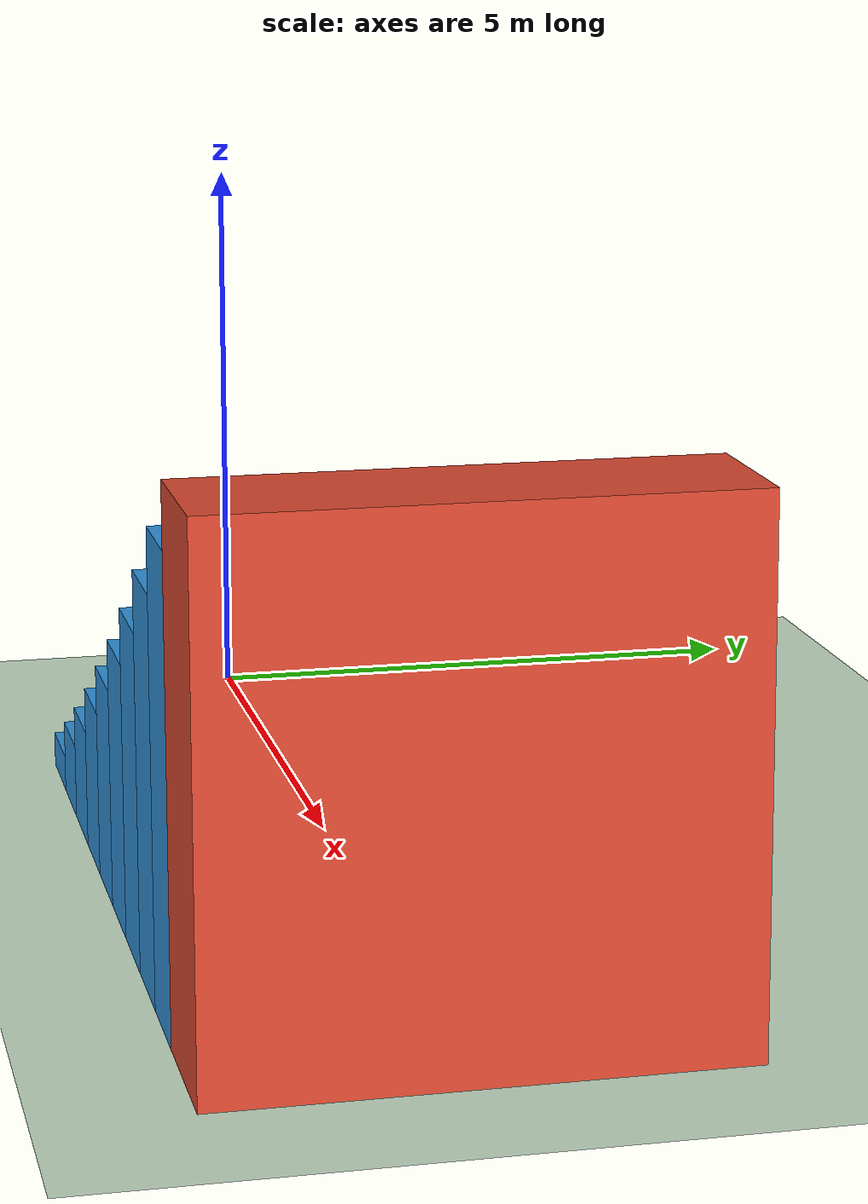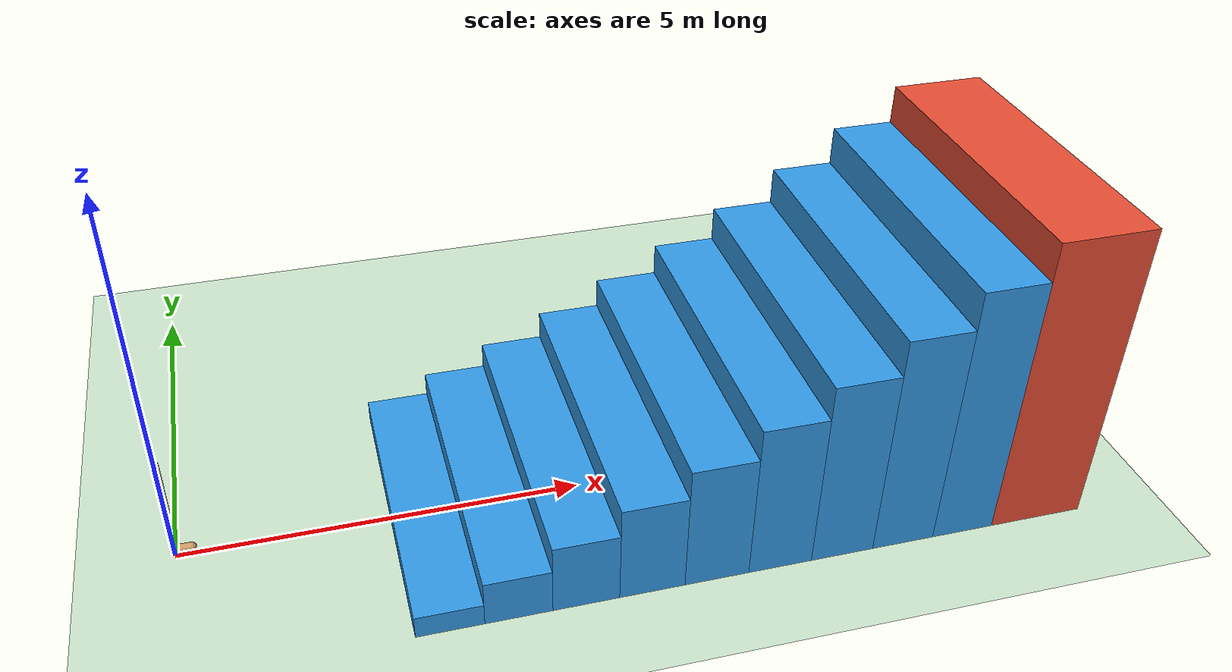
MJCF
<!--
Walker2D Cumulative 10-Step Stairs Model (Step Rise: +0.30m ~ +0.50m)
Total Accumulating Height up to ~4.1m
With Final Jump Landing Drop-off
-->
<mujoco model="walker2d_stairs10_03_05">
  <compiler angle="degree" inertiafromgeom="true"/>
  <default>
    <joint armature="0.01" damping=".1" limited="true"/>
    <geom conaffinity="0" condim="3" contype="1" density="1000" friction=".7 .1 .1" rgba="0.8 0.6 .4 1"/>
  </default>
  <option integrator="RK4" timestep="0.002"/>
  <worldbody>
    <light cutoff="100" diffuse="1 1 1" dir="-0 0 -1.3" directional="true" exponent="1" pos="0 0 1.3" specular=".1 .1 .1"/>

    <!-- 기본 평지 바닥 (z=0) -->
    <geom conaffinity="1" condim="3" name="floor" pos="0 0 0" rgba="0.8 0.9 0.8 1" size="40 40 40" type="plane" material="MatPlane"/>

    <!--
      10계단 누적 지형 (Step 1~10: 계단당 단차 +0.30m ~ +0.50m 씩 점진적 상승)
      Total Height Profile: 0.30m -> 0.62m -> 0.97m -> 1.35m -> 1.75m -> 2.17m -> 2.62m -> 3.10m -> 3.60m -> 4.10m
    -->
    <!-- 계단 1: 단차 +0.30m, 누적 0.30m -->
    <geom conaffinity="1" condim="3" name="bump1" pos="3.0 0 0.15" size="0.4 2 0.15" type="box" rgba="0.2 0.6 0.9 1" material="MatPlane"/>
    <!-- 계단 2: 단차 +0.32m, 누적 0.62m -->
    <geom conaffinity="1" condim="3" name="bump2" pos="3.8 0 0.31" size="0.4 2 0.31" type="box" rgba="0.2 0.6 0.9 1" material="MatPlane"/>
    <!-- 계단 3: 단차 +0.35m, 누적 0.97m -->
    <geom conaffinity="1" condim="3" name="bump3" pos="4.6 0 0.485" size="0.4 2 0.485" type="box" rgba="0.2 0.6 0.9 1" material="MatPlane"/>
    <!-- 계단 4: 단차 +0.38m, 누적 1.35m -->
    <geom conaffinity="1" condim="3" name="bump4" pos="5.4 0 0.675" size="0.4 2 0.675" type="box" rgba="0.2 0.6 0.9 1" material="MatPlane"/>
    <!-- 계단 5: 단차 +0.40m, 누적 1.75m -->
    <geom conaffinity="1" condim="3" name="bump5" pos="6.2 0 0.875" size="0.4 2 0.875" type="box" rgba="0.2 0.6 0.9 1" material="MatPlane"/>
    <!-- 계단 6: 단차 +0.42m, 누적 2.17m -->
    <geom conaffinity="1" condim="3" name="bump6" pos="7.0 0 1.085" size="0.4 2 1.085" type="box" rgba="0.2 0.6 0.9 1" material="MatPlane"/>
    <!-- 계단 7: 단차 +0.45m, 누적 2.62m -->
    <geom conaffinity="1" condim="3" name="bump7" pos="7.8 0 1.31" size="0.4 2 1.31" type="box" rgba="0.2 0.6 0.9 1" material="MatPlane"/>
    <!-- 계단 8: 단차 +0.48m, 누적 3.10m -->
    <geom conaffinity="1" condim="3" name="bump8" pos="8.6 0 1.55" size="0.4 2 1.55" type="box" rgba="0.2 0.6 0.9 1" material="MatPlane"/>
    <!-- 계단 9: 단차 +0.50m, 누적 3.60m -->
    <geom conaffinity="1" condim="3" name="bump9" pos="9.4 0 1.80" size="0.4 2 1.80" type="box" rgba="0.2 0.6 0.9 1" material="MatPlane"/>
    <!-- 계단 10: 단차 +0.50m, 누적 4.10m (최종 4.1m 고도 정상 도약대) -->
    <geom conaffinity="1" condim="3" name="bump10" pos="10.4 0 2.05" size="0.6 2 2.05" type="box" rgba="0.9 0.3 0.2 1" material="MatPlane"/>

    <body name="torso" pos="0 0 1.25">
      <camera name="track" mode="trackcom" pos="0 -3 -0.25" xyaxes="1 0 0 0 0 1"/>
      <joint armature="0" axis="1 0 0" damping="0" limited="false" name="rootx" pos="0 0 -1.25" stiffness="0" type="slide"/>
      <joint armature="0" axis="0 0 1" damping="0" limited="false" name="rootz" pos="0 0 -1.25" ref="1.25" stiffness="0" type="slide"/>
      <joint armature="0" axis="0 1 0" damping="0" limited="false" name="rooty" pos="0 0 0" stiffness="0" type="hinge"/>
      <geom friction="0.9" name="torso_geom" size="0.05 0.2" type="capsule"/>
      <body name="thigh" pos="0 0 -0.2">
        <joint axis="0 -1 0" name="thigh_joint" pos="0 0 0" range="-150 0" type="hinge"/>
        <geom friction="0.9" pos="0 0 -0.225" name="thigh_geom" size="0.05 0.225" type="capsule"/>
        <body name="leg" pos="0 0 -0.7">
          <joint axis="0 -1 0" name="leg_joint" pos="0 0 0.25" range="-150 0" type="hinge"/>
          <geom friction="0.9" name="leg_geom" size="0.04 0.25" type="capsule"/>
          <body name="foot" pos="0.2 0 -0.35">
            <joint axis="0 -1 0" name="foot_joint" pos="-0.2 0 0.1" range="-45 45" type="hinge"/>
            <geom friction="1.9" pos="-0.1 0 0.1" quat="0.70710678118654757 0 -0.70710678118654746 0" name="foot_geom" size="0.06 0.1" type="capsule"/>
          </body>
        </body>
      </body>
      <body name="thigh_left" pos="0 0 -0.2">
        <joint axis="0 -1 0" name="thigh_left_joint" pos="0 0 0" range="-150 0" type="hinge"/>
        <geom friction="0.9" name="thigh_left_geom" rgba=".7 .3 .6 1" size="0.05 0.225" pos="0 0 -0.225" type="capsule"/>
        <body name="leg_left" pos="0 0 -0.7">
          <joint axis="0 -1 0" name="leg_left_joint" pos="0 0 0.25" range="-150 0" type="hinge"/>
          <geom friction="0.9" name="leg_left_geom" rgba=".7 .3 .6 1" size="0.04 0.25" type="capsule"/>
          <body name="foot_left" pos="0.2 0 -0.35">
            <joint axis="0 -1 0" name="foot_left_joint" pos="-0.2 0 0.1" range="-45 45" type="hinge"/>
            <geom friction="1.9" name="foot_left_geom" rgba=".7 .3 .6 1" size="0.06 0.1" pos="-0.1 0 0.1" type="capsule" quat="0.70710678118654757 0 -0.70710678118654746 0"/>
          </body>
        </body>
      </body>
    </body>
  </worldbody>
  <actuator>
    <motor ctrllimited="true" ctrlrange="-1.0 1.0" gear="100" joint="thigh_joint"/>
    <motor ctrllimited="true" ctrlrange="-1.0 1.0" gear="100" joint="leg_joint"/>
    <motor ctrllimited="true" ctrlrange="-1.0 1.0" gear="100" joint="foot_joint"/>
    <motor ctrllimited="true" ctrlrange="-1.0 1.0" gear="100" joint="thigh_left_joint"/>
    <motor ctrllimited="true" ctrlrange="-1.0 1.0" gear="100" joint="leg_left_joint"/>
    <motor ctrllimited="true" ctrlrange="-1.0 1.0" gear="100" joint="foot_left_joint"/>
  </actuator>
  <asset>
    <texture type="skybox" builtin="gradient" rgb1=".4 .5 .6" rgb2="0 0 0" width="100" height="100"/>
    <texture builtin="flat" height="1278" mark="cross" markrgb="1 1 1" name="texgeom" random="0.01" rgb1="0.8 0.6 0.4" rgb2="0.8 0.6 0.4" type="cube" width="127"/>
    <texture builtin="checker" height="100" name="texplane" rgb1="0 0 0" rgb2="0.8 0.8 0.8" type="2d" width="100"/>
    <material name="MatPlane" reflectance="0.5" shininess="1" specular="1" texrepeat="60 60" texture="texplane"/>
    <material name="geom" texture="texgeom" texuniform="true"/>
  </asset>
</mujoco>
